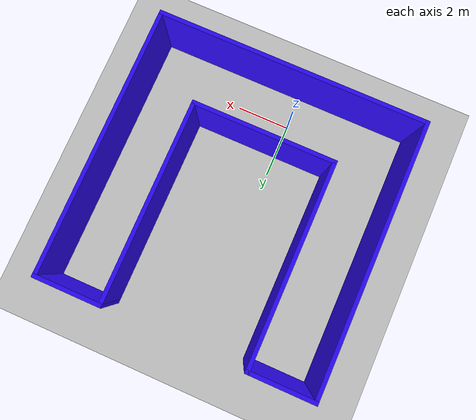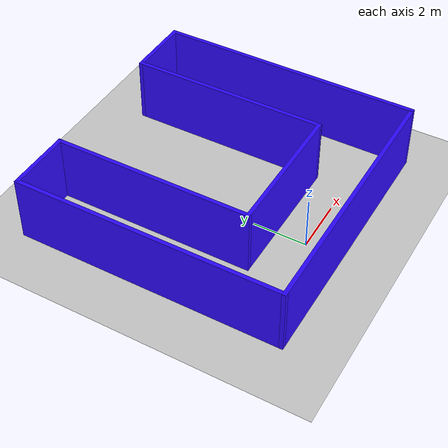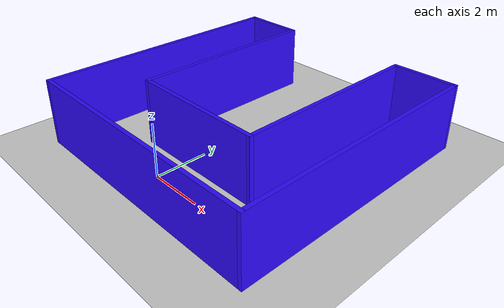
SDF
<sdf version="1.6">
 <world name="default">
  <light name="sun" type="directional">
   <pose>0 0 15 0 -0 0</pose>
   <diffuse>0.8 0.8 0.8 1</diffuse>
   <specular>0.2 0.2 0.2 1</specular>
   <attenuation>
    <range>1000</range>
    <constant>0.9</constant>
    <linear>0.01</linear>
    <quadratic>0.001</quadratic>
   </attenuation>
   <direction>-0.5 0.1 -0.9</direction>
  </light>
  <model name="ground_plane">
   <static>1</static>
   <link name="link">
    <collision name="collision">
     <geometry><plane><normal>0 0 1</normal><size>100 100</size></plane></geometry>
     <surface><friction><ode><mu>100</mu><mu2>50</mu2></ode></friction></surface>
    </collision>
    <visual name="visual">
     <cast_shadows>0</cast_shadows>
     <geometry><plane><normal>0 0 1</normal><size>100 100</size></plane></geometry>
     <material>
      <script><uri>file://media/materials/scripts/gazebo.material</uri><name>Gazebo/Grey</name></script>
     </material>
    </visual>
   </link>
  </model>
  <gravity>0 0 -9.8</gravity>
  <magnetic_field>6e-06 2.3e-05 -4.2e-05</magnetic_field>
  <atmosphere type="adiabatic"/>
  <physics name="default_physics" default="0" type="ode">
   <max_step_size>0.001</max_step_size>
   <real_time_factor>1</real_time_factor>
   <real_time_update_rate>1000</real_time_update_rate>
  </physics>
  <scene><ambient>0.4 0.4 0.4 1</ambient><background>0.7 0.7 0.7 1</background><shadows>1</shadows></scene>
  <spherical_coordinates>
   <surface_model>EARTH_WGS84</surface_model>
   <latitude_deg>0</latitude_deg>
   <longitude_deg>0</longitude_deg>
   <elevation>0</elevation>
   <heading_deg>0</heading_deg>
  </spherical_coordinates>
  <model name="custom_map">
   <pose>0.622698 3.6255 0 0 -0 0</pose>
   <link name="Wall_11">
    <collision name="Wall_11_Collision">
     <geometry><box><size>10 0.15 2.5</size></box></geometry>
     <pose>0 0 1.25 0 -0 0</pose>
    </collision>
    <visual name="Wall_11_Visual">
     <pose>0 0 1.25 0 -0 0</pose>
     <geometry><box><size>10 0.15 2.5</size></box></geometry>
     <material>
      <script><uri>file://media/materials/scripts/gazebo.material</uri><name>Gazebo/Grey</name></script>
      <ambient>0.172549 0.027451 1 1</ambient>
     </material>
     <meta><layer>0</layer></meta>
    </visual>
    <pose>-4.92503 -5e-06 0 0 -0 1.5708</pose>
   </link>
   <link name="Wall_13">
    <collision name="Wall_13_Collision">
     <geometry><box><size>2.5 0.15 2.5</size></box></geometry>
     <pose>0 0 1.25 0 -0 0</pose>
    </collision>
    <visual name="Wall_13_Visual">
     <pose>0 0 1.25 0 -0 0</pose>
     <geometry><box><size>2.5 0.15 2.5</size></box></geometry>
     <material>
      <script><uri>file://media/materials/scripts/gazebo.material</uri><name>Gazebo/Grey</name></script>
      <ambient>0.172549 0.027451 1 1</ambient>
     </material>
     <meta><layer>0</layer></meta>
    </visual>
    <pose>-3.75003 4.925 0 0 -0 0</pose>
   </link>
   <link name="Wall_15">
    <collision name="Wall_15_Collision">
     <geometry><box><size>2.5 0.15 2.5</size></box></geometry>
     <pose>0 0 1.25 0 -0 0</pose>
    </collision>
    <visual name="Wall_15_Visual">
     <pose>0 0 1.25 0 -0 0</pose>
     <geometry><box><size>2.5 0.15 2.5</size></box></geometry>
     <material>
      <script><uri>file://media/materials/scripts/gazebo.material</uri><name>Gazebo/Grey</name></script>
      <ambient>0.172549 0.027451 1 1</ambient>
     </material>
     <meta><layer>0</layer></meta>
    </visual>
    <pose>3.75002 4.92484 0 0 0 -3.14146</pose>
   </link>
   <link name="Wall_17">
    <collision name="Wall_17_Collision">
     <geometry><box><size>7.5 0.15 2.5</size></box></geometry>
     <pose>0 0 1.25 0 -0 0</pose>
    </collision>
    <visual name="Wall_17_Visual">
     <pose>0 0 1.25 0 -0 0</pose>
     <geometry><box><size>7.5 0.15 2.5</size></box></geometry>
     <material>
      <script><uri>file://media/materials/scripts/gazebo.material</uri><name>Gazebo/Grey</name></script>
      <ambient>0.172549 0.027451 1 1</ambient>
     </material>
     <meta><layer>0</layer></meta>
    </visual>
    <pose>-2.57503 1.24999 0 0 0 -1.5708</pose>
   </link>
   <link name="Wall_19">
    <collision name="Wall_19_Collision">
     <geometry><box><size>7.5 0.15 2.5</size></box></geometry>
     <pose>0 0 1.25 0 -0 0</pose>
    </collision>
    <visual name="Wall_19_Visual">
     <pose>0 0 1.25 0 -0 0</pose>
     <geometry><box><size>7.5 0.15 2.5</size></box></geometry>
     <material>
      <script><uri>file://media/materials/scripts/gazebo.material</uri><name>Gazebo/Grey</name></script>
      <ambient>0.172549 0.027451 1 1</ambient>
     </material>
     <meta><layer>0</layer></meta>
    </visual>
    <pose>2.57508 1.24968 0 0 0 -1.5708</pose>
   </link>
   <link name="Wall_21">
    <collision name="Wall_21_Collision">
     <geometry><box><size>5.30011 0.15 2.5</size></box></geometry>
     <pose>0 0 1.25 0 -0 0</pose>
    </collision>
    <visual name="Wall_21_Visual">
     <pose>0 0 1.25 0 -0 0</pose>
     <geometry><box><size>5.30011 0.15 2.5</size></box></geometry>
     <material>
      <script><uri>file://media/materials/scripts/gazebo.material</uri><name>Gazebo/Grey</name></script>
      <ambient>0.172549 0.027451 1 1</ambient>
     </material>
     <meta><layer>0</layer></meta>
    </visual>
    <pose>2.4e-05 -2.42516 0 0 0 -6.1e-05</pose>
   </link>
   <link name="Wall_7">
    <collision name="Wall_7_Collision">
     <geometry><box><size>10 0.15 2.5</size></box></geometry>
     <pose>0 0 1.25 0 -0 0</pose>
    </collision>
    <visual name="Wall_7_Visual">
     <pose>0 0 1.25 0 -0 0</pose>
     <geometry><box><size>10 0.15 2.5</size></box></geometry>
     <material>
      <script><uri>file://media/materials/scripts/gazebo.material</uri><name>Gazebo/Grey</name></script>
      <ambient>0.172549 0.027451 1 1</ambient>
     </material>
     <meta><layer>0</layer></meta>
    </visual>
    <pose>-3.4e-05 -4.925 0 0 -0 0</pose>
   </link>
   <link name="Wall_9">
    <collision name="Wall_9_Collision">
     <geometry><box><size>10 0.15 2.5</size></box></geometry>
     <pose>0 0 1.25 0 -0 0</pose>
    </collision>
    <visual name="Wall_9_Visual">
     <pose>0 0 1.25 0 -0 0</pose>
     <geometry><box><size>10 0.15 2.5</size></box></geometry>
     <material>
      <script><uri>file://media/materials/scripts/gazebo.material</uri><name>Gazebo/Grey</name></script>
      <ambient>0.172549 0.027451 1 1</ambient>
     </material>
     <meta><layer>0</layer></meta>
    </visual>
    <pose>4.92497 -5e-06 0 0 -0 1.5708</pose>
   </link>
   <static>1</static>
  </model>
 </world>
</sdf>
